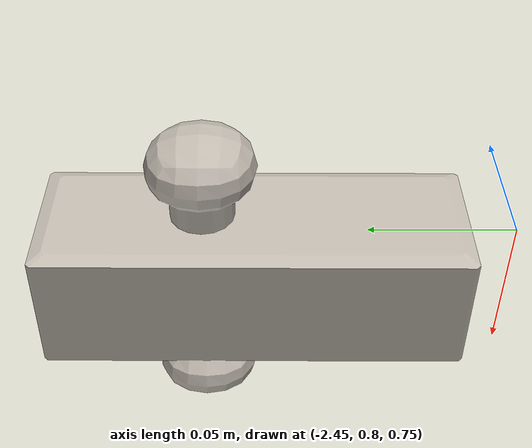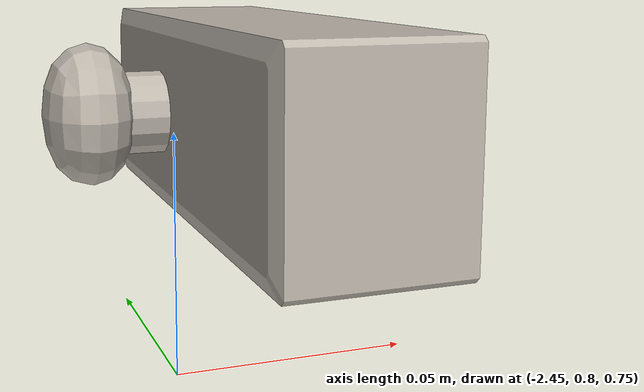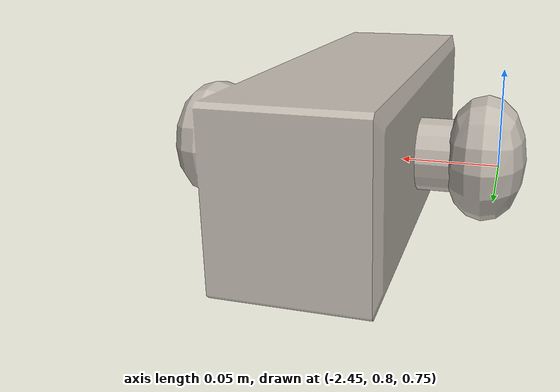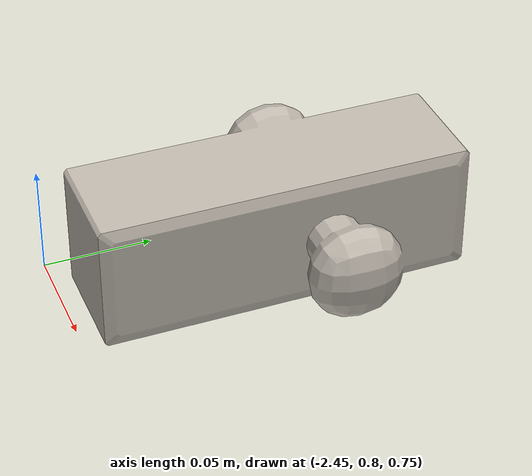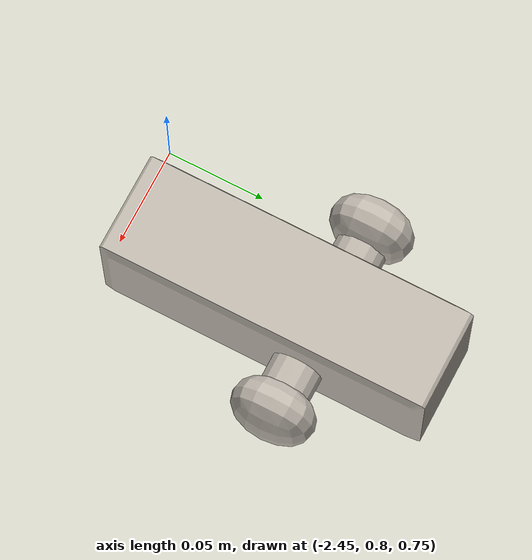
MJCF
<mujoco model="StandardKnob1(2)_9b9d9112">
  <compiler autolimits="true" boundmass="0.01" angle="radian"/>
  <default>
    <default class="/">
      <default class="__VISUAL_MJT__">
        <geom contype="0" conaffinity="0" group="0" mass="1e-08"/>
      </default>
      <default class="__STRUCTURAL_MJT__">
        <geom contype="8" conaffinity="15" group="4" friction="0.90000000000000002 0.90000000000000002 0.001" density="500" solref="0.025000000000000001 1" solimp="0.998 0.998 0.001"/>
      </default>
      <default class="__DYNAMIC_MJT__">
        <geom contype="1" conaffinity="15" group="4" friction="0.90000000000000002 0.90000000000000002 0.001" density="500" solref="0.025000000000000001 1" solimp="0.998 0.998 0.001"/>
      </default>
      <default class="__ARTICULABLE_DYNAMIC_MJT__">
        <geom contype="0" conaffinity="7" group="4" friction="0.90000000000000002 0.90000000000000002 0.001" density="500" solref="0.025000000000000001 1" solimp="0.998 0.998 0.001"/>
      </default>
    </default>
  </default>
  <asset>
    <texture name="Copper_AlbedoTransparency" type="2d" file="Copper_AlbedoTransparency.png"/>
    <material name="material_Copper_AlbedoTransparency" class="/" texture="Copper_AlbedoTransparency" specular="0.5" shininess="0.5" rgba="1 1 1 1"/>
    <mesh name="StandardKnob1(2)_9b9d9112_StandardKnob1_(2)_9b9d9112" class="/" file="StandardKnob1(2)_9b9d9112_StandardKnob1_(2)_9b9d9112/StandardKnob1(2)_9b9d9112_StandardKnob1_(2)_9b9d9112.obj" scale="1 1 1" inertia="legacy"/>
  </asset>
  <worldbody>
    <body name="StandardKnob1(2)_9b9d9112">
      <body name="StandardKnob1(2)_9b9d9112_StandardKnob1_(2)_9b9d9112" pos="-0 0 0" quat="1 0 0 0">
        <geom name="StandardKnob1(2)_9b9d9112_StandardKnob1_(2)_9b9d9112" class="__VISUAL_MJT__" type="mesh" material="material_Copper_AlbedoTransparency" mesh="StandardKnob1(2)_9b9d9112_StandardKnob1_(2)_9b9d9112"/>
        <geom name="StandardKnob1(2)_9b9d9112_StandardKnob1_(2)_9b9d9112_PrimitiveCollider_0" class="__DYNAMIC_MJT__" type="box" size="0.030268866568803787 0.083424091339111328 0.026651596650481224" rgba="0 1 0 1" pos="-2.4000000953674316 0.88700002431869507 0.78860002756118774" quat="8.6595606834267297e-17 0.70710678118654757 -8.6595606834267297e-17 0.70710678118654757"/>
        <geom name="StandardKnob1(2)_9b9d9112_StandardKnob1_(2)_9b9d9112_PrimitiveCollider_1" class="__DYNAMIC_MJT__" type="box" size="0.012208702974021435 0.012162581086158752 0.045925412327051163" rgba="0 1 0 1" pos="-2.4000000953674316 0.907867431640625 0.78860002756118774" quat="8.6595606834267297e-17 0.70710678118654757 -8.6595606834267297e-17 0.70710678118654757"/>
        <geom name="StandardKnob1(2)_9b9d9112_StandardKnob1_(2)_9b9d9112_PrimitiveCollider_2" class="__DYNAMIC_MJT__" type="capsule" size="0.020163647830486298 0.00038635917007923126" rgba="0 1 0 1" pos="-2.4457001686096191 0.9100000262260437 0.78833526372909546" quat="0.50000000000000011 0.5 -0.50000000000000011 0.5"/>
        <geom name="StandardKnob1(2)_9b9d9112_StandardKnob1_(2)_9b9d9112_PrimitiveCollider_3" class="__DYNAMIC_MJT__" type="capsule" size="0.021146373823285103 1.0000000000000001e-05" rgba="0 1 0 1" pos="-2.3573000431060791 0.90710002183914185 0.78853523731231689" quat="0.50000000000000011 0.5 -0.50000000000000011 0.5"/>
      </body>
    </body>
  </worldbody>
</mujoco>
